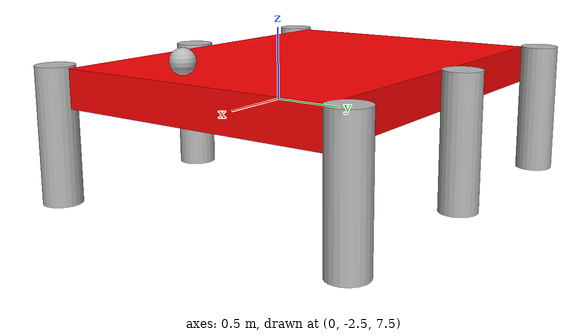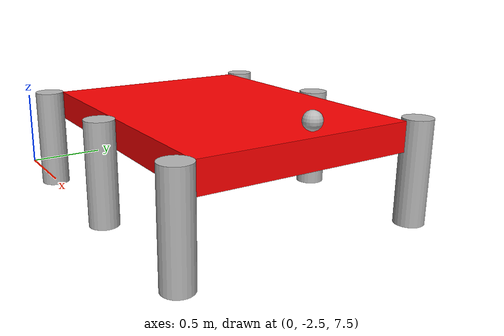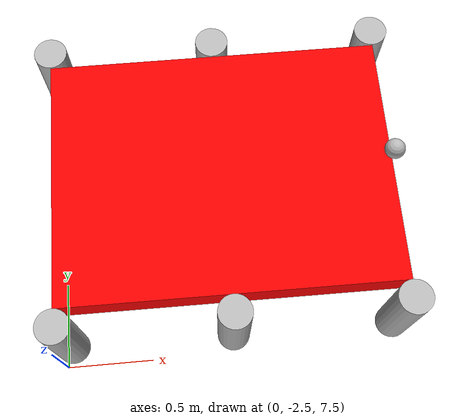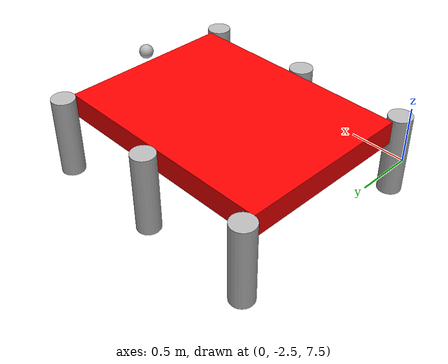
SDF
<?xml version="1.0"?>
<sdf version="1.4">
  <world name="default">

    <!-- Ground Plane -->
    <include>
      <uri>model://ground_plane</uri>
    </include>

    <include>
      <uri>model://sun</uri>
    </include>

   <model name="car">
    <pose>1 -1.5 7.5 0 0 0</pose>
    <link name='chassis'>
        <gravity>0</gravity>
          <pose>0 0 .4 0 0 0</pose>
          <inertial>
            <inertia>
              <ixx>1</ixx>
              <ixy>0</ixy>
              <ixz>0</ixz>
              <iyy>1</iyy>
              <iyz>0</iyz>
              <izz>1</izz>
            </inertia>
            <mass>10.0</mass>
          </inertial>
          <collision name='collision'>
            <geometry>
              <box>
                <size>2 1.5 .2</size>
              </box>
            </geometry>
          </collision>

          <visual name='visual'>
            <geometry>
              <box>
                <size>2 1.5 .2</size>
              </box>
            </geometry>
            <material>
              <ambient>1 0 0 1</ambient>
              <shader type='vertex'>
                <normal_map>__default__</normal_map>
              </shader>
            </material>
          </visual>
      </link>

      <link name="front_indicator">
        <pose>1 0 0.6 0 0 0</pose>
          <geometry>
              <sphere>
              <radius>.06</radius>
            </sphere>
          </geometry>
        <visual name="visual">
          <geometry>
              <sphere>
              <radius>.06</radius>
            </sphere>
          </geometry>
          <material>Gazebo/Blue</material>
        </visual>
      </link>

      <link name="left_front_wheel">
        <pose>1 .85 .16 0 0 3.1414</pose>
        <inertial>
          <inertia>
            <ixx>1</ixx>
            <ixy>0</ixy>
            <ixz>0</ixz>
            <iyy>1</iyy>
            <iyz>0</iyz>
            <izz>1</izz>
          </inertia>
          <mass>2.0</mass>
        </inertial>
        <collision name="collision">
          <geometry>
            <cylinder>
              <radius>.1</radius>
              <length>.7</length>
            </cylinder>
          </geometry>
        </collision>
        <visual name="visual">
          <geometry>
            <cylinder>
              <radius>.1</radius>
              <length>.7</length>
            </cylinder>
          </geometry>
        </visual>
      </link>

      <link name="right_front_wheel">
        <pose>1 -.85 .16 0 0 3.1414</pose>
        <inertial>
          <inertia>
            <ixx>1</ixx>
            <ixy>0</ixy>
            <ixz>0</ixz>
            <iyy>1</iyy>
            <iyz>0</iyz>
            <izz>1</izz>
          </inertia>
          <mass>2.0</mass>
        </inertial>
        <collision name="collision">
          <geometry>
            <cylinder>
              <radius>.1</radius>
              <length>.7</length>
            </cylinder>
          </geometry>
        </collision>
        <visual name="visual">
          <geometry>
            <cylinder>
              <radius>.1</radius>
              <length>.7</length>
            </cylinder>
          </geometry>
        </visual>
      </link>

      <link name="left_middle_wheel">
        <pose>0 .85 .16 0 0 3.1414</pose>
        <inertial>
          <inertia>
            <ixx>1</ixx>
            <ixy>0</ixy>
            <ixz>0</ixz>
            <iyy>1</iyy>
            <iyz>0</iyz>
            <izz>1</izz>
          </inertia>
          <mass>2.0</mass>
        </inertial>
        <collision name="collision">
          <geometry>
            <cylinder>
              <radius>.1</radius>
              <length>.7</length>
            </cylinder>
          </geometry>
        </collision>
        <visual name="visual">
          <geometry>
            <cylinder>
              <radius>.1</radius>
              <length>.7</length>
            </cylinder>
          </geometry>
        </visual>
      </link>

      <link name="right_middle_wheel">
        <pose>0 -.85 .16 0 0 3.1414</pose>
        <inertial>
          <inertia>
            <ixx>1</ixx>
            <ixy>0</ixy>
            <ixz>0</ixz>
            <iyy>1</iyy>
            <iyz>0</iyz>
            <izz>1</izz>
          </inertia>
          <mass>2.0</mass>
        </inertial>
        <collision name="collision">
          <geometry>
            <cylinder>
              <radius>.1</radius>
              <length>.7</length>
            </cylinder>
          </geometry>
        </collision>
        <visual name="visual">
          <geometry>
            <cylinder>
              <radius>.1</radius>
              <length>.7</length>
            </cylinder>
          </geometry>
        </visual>
      </link>

      <link name="left_back_wheel">
        <pose>-1 .85 .16 0 0 3.1414</pose>
        <inertial>
          <inertia>
            <ixx>1</ixx>
            <ixy>0</ixy>
            <ixz>0</ixz>
            <iyy>1</iyy>
            <iyz>0</iyz>
            <izz>1</izz>
          </inertia>
          <mass>2.0</mass>
        </inertial>
        <collision name="collision">
          <geometry>
            <cylinder>
              <radius>.1</radius>
              <length>.7</length>
            </cylinder>
          </geometry>
        </collision>
        <visual name="visual">
          <geometry>
            <cylinder>
              <radius>.1</radius>
              <length>.7</length>
            </cylinder>
          </geometry>
        </visual>
      </link>

      <link name="right_back_wheel">
        <pose>-1 -.85 .16 0 0 3.1414</pose>
        <inertial>
          <inertia>
            <ixx>1</ixx>
            <ixy>0</ixy>
            <ixz>0</ixz>
            <iyy>1</iyy>
            <iyz>0</iyz>
            <izz>1</izz>
          </inertia>
          <mass>2.0</mass>
        </inertial>
        <collision name="collision">
          <geometry>
            <cylinder>
              <radius>.1</radius>
              <length>.7</length>
            </cylinder>
          </geometry>
        </collision>
        <visual name="visual">
          <geometry>
            <cylinder>
              <radius>.1</radius>
              <length>.7</length>
            </cylinder>
          </geometry>
        </visual>
      </link>

      <joint type="revolute" name="left_front_wheel_hinge">
        <pose>0 0 .1 0 0 0</pose>
        <child>left_front_wheel</child>
        <parent>chassis</parent>
        <axis>
          <xyz>0 1 0</xyz>
        </axis>
      </joint>

      <joint type="revolute" name="right_back_wheel_hinge">
        <pose>0 0 .1 0 0 0</pose>
        <child>right_back_wheel</child>
        <parent>chassis</parent>
        <axis>
          <xyz>0 1 0</xyz>
        </axis>
      </joint>

      <joint type="revolute" name="left_middle_wheel_hinge">
        <pose>0 0 .1 0 0 0</pose>
        <child>left_middle_wheel</child>
        <parent>chassis</parent>
        <axis>
          <xyz>0 1 0</xyz>
        </axis>
      </joint>

      <joint type="revolute" name="right_middle_wheel_hinge">
        <pose>0 0 .1 0 0 0</pose>
        <child>right_middle_wheel</child>
        <parent>chassis</parent>
        <axis>
          <xyz>0 1 0</xyz>
        </axis>
      </joint>

      <joint type="revolute" name="left_back_wheel_hinge">
        <pose>0 0 .1 0 0 0</pose>
        <child>left_back_wheel</child>
        <parent>chassis</parent>
        <axis>
          <xyz>0 1 0</xyz>
        </axis>
      </joint>

      <joint type="revolute" name="right_front_wheel_hinge">
        <pose>0 0 .1 0 0 0</pose>
        <child>right_front_wheel</child>
        <parent>chassis</parent>
        <axis>
          <xyz>0 1 0</xyz>
        </axis>
      </joint>

      <joint type="fixed" name="indicator_joint">
        <pose>0 0 0 0 0 0</pose>
        <child>front_indicator</child>
        <parent>chassis</parent>
      </joint>
      <plugin name="wheeledRobot" filename="libwheeledRobot.so"/>
    </model>
</world>
</sdf>
